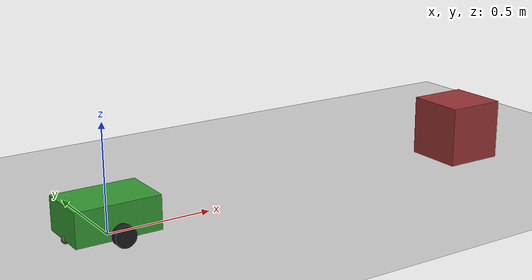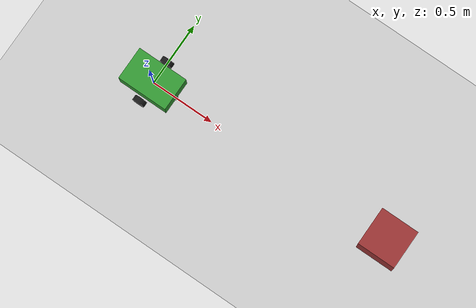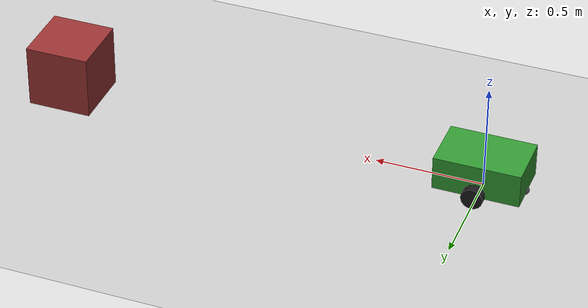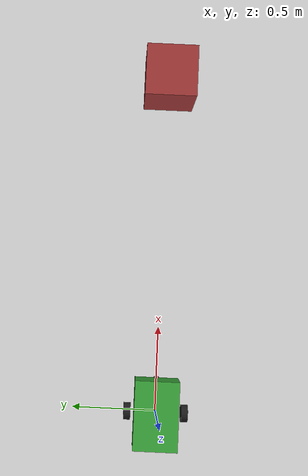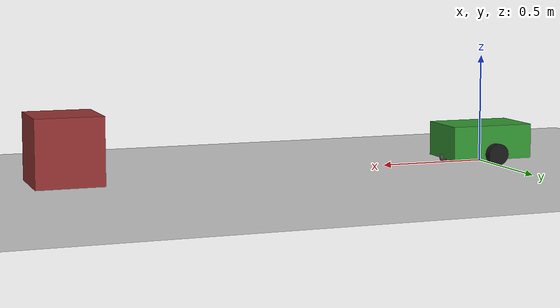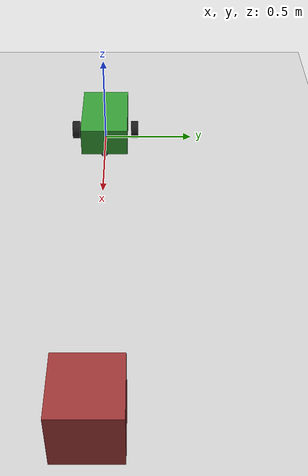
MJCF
<mujoco model="tank_wheeled">
  <option timestep="0.002" gravity="0 0 -9.81"/>

  <default>
    <geom friction="1.0 0.005 0.0001" contype="1" conaffinity="1"
          solref="0.02 1" solimp="0.9 0.95 0.001"/>
  </default>

  <worldbody>
    <light diffuse="0.8 0.8 0.8" pos="0 0 5" dir="0 0 -1"/>
    <geom name="floor" type="plane" size="10 10 0.1" rgba="0.8 0.8 0.8 1"/>

    <body name="tank_body" pos="0 0 0.1">
    <freejoint/>
    <geom name="tank_geom" type="box" size="0.2 0.13 0.08" rgba="0.2 0.6 0.2 1" mass="4"/>

    <!-- 왼쪽 바퀴: 몸체 폭(0.13) 안쪽으로 배치 -->
    <body name="left_wheel" pos="0 0.17 -0.05">
        <joint name="left_wheel_joint" type="hinge" axis="0 1 0" damping="0.3"/>
        <geom type="cylinder" size="0.05 0.02" euler="90 0 0" rgba="0.1 0.1 0.1 1" mass="0.3"/>
    </body>

    <body name="right_wheel" pos="0 -0.17 -0.05">
        <joint name="right_wheel_joint" type="hinge" axis="0 1 0" damping="0.3"/>
        <geom type="cylinder" size="0.05 0.02" euler="90 0 0" rgba="0.1 0.1 0.1 1" mass="0.3"/>
    </body>

        <!-- 앞쪽 캐스터 -->
    <body name="caster_front" pos="0.19 0 -0.08">
      <geom type="sphere" size="0.02" rgba="0.3 0.3 0.3 1" mass="0.05"
            friction="0.05 0.005 0.0001"/>
    </body>

    <!-- 뒤쪽 캐스터 -->
    <body name="caster_rear" pos="-0.19 0 -0.08">
      <geom type="sphere" size="0.02" rgba="0.3 0.3 0.3 1" mass="0.05"
            friction="0.05 0.005 0.0001"/>
    </body>

    </body>

    <body name="obstacle1" pos="2 0 0.15">
      <geom type="box" size="0.15 0.15 0.15" rgba="0.6 0.2 0.2 1"/>
    </body>
  </worldbody>

  <contact>
    <exclude body1="tank_body" body2="left_wheel"/>
    <exclude body1="tank_body" body2="right_wheel"/>
    <exclude body1="tank_body" body2="caster_front"/>
    <exclude body1="tank_body" body2="caster_rear"/>
  </contact>

  <actuator>
    <motor joint="left_wheel_joint" ctrlrange="-5 5" gear="1"/>
    <motor joint="right_wheel_joint" ctrlrange="-5 5" gear="1"/>
  </actuator>
</mujoco>
